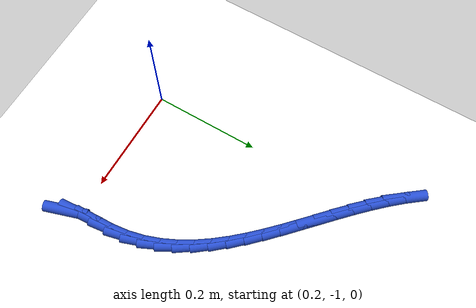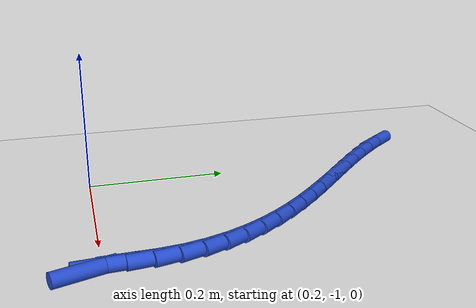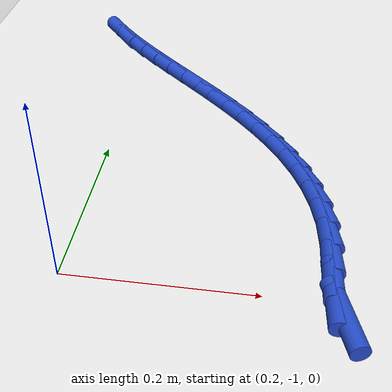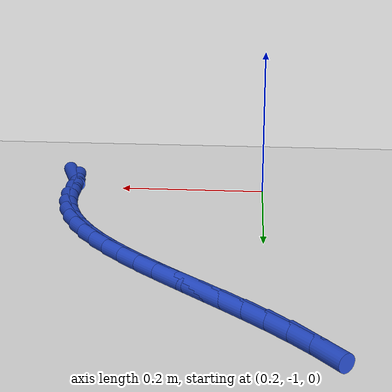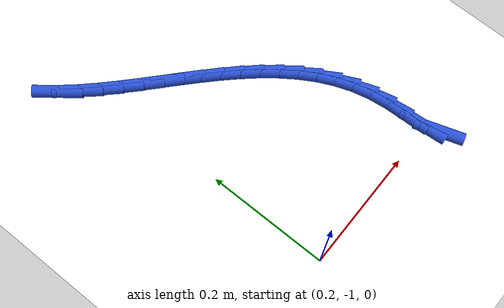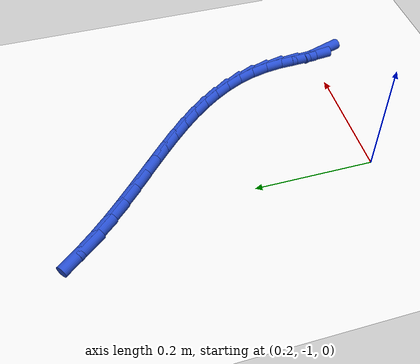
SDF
<sdf version="1.6">
 <world name="default">
  <model name="ground_plane">
   <static>1</static>
   <link name="link">
    <collision name="collision">
     <geometry><plane><normal>0 0 1</normal><size>100 100</size></plane></geometry>
     <surface><friction><ode><mu>100</mu><mu2>50</mu2></ode></friction></surface>
    </collision>
    <visual name="visual">
     <cast_shadows>0</cast_shadows>
     <geometry><plane><normal>0 0 1</normal><size>100 100</size></plane></geometry>
     <material>
      <script><uri>file://media/materials/scripts/gazebo.material</uri><name>Gazebo/WhiteGlow</name></script>
     </material>
    </visual>
   </link>
  </model>
  <model name="line">
   <link name="link_212">
    <pose>0.4740690584498068 -1.020296356066249 0.01 0 1.57 -1.2553770291629291</pose>
    <collision name="collision">
     <geometry><cylinder><radius>0.01</radius><length>0.08</length></cylinder></geometry>
    </collision>
    <visual name="visual">
     <material>
      <script><name>Gazebo/Blue</name><uri>file://media/materials/scripts/gazebo.material</uri></script>
     </material>
     <geometry><cylinder><radius>0.01</radius><length>0.08</length></cylinder></geometry>
    </visual>
   </link>
   <link name="link_213">
    <pose>0.4661268190462648 -0.9959570514894299 0.01 0 1.57 -1.4913631433843777</pose>
    <collision name="collision">
     <geometry><cylinder><radius>0.01</radius><length>0.08</length></cylinder></geometry>
    </collision>
    <visual name="visual">
     <material>
      <script><name>Gazebo/Blue</name><uri>file://media/materials/scripts/gazebo.material</uri></script>
     </material>
     <geometry><cylinder><radius>0.01</radius><length>0.08</length></cylinder></geometry>
    </visual>
   </link>
   <link name="link_214">
    <pose>0.4637227643011565 -0.9657556132305034 0.01 0 1.57 -1.5306706487480346</pose>
    <collision name="collision">
     <geometry><cylinder><radius>0.01</radius><length>0.08</length></cylinder></geometry>
    </collision>
    <visual name="visual">
     <material>
      <script><name>Gazebo/Blue</name><uri>file://media/materials/scripts/gazebo.material</uri></script>
     </material>
     <geometry><cylinder><radius>0.01</radius><length>0.08</length></cylinder></geometry>
    </visual>
   </link>
   <link name="link_215">
    <pose>0.4624248432940678 -0.9334265806955132 0.01 0 1.57 -1.4438494845119905</pose>
    <collision name="collision">
     <geometry><cylinder><radius>0.01</radius><length>0.08</length></cylinder></geometry>
    </collision>
    <visual name="visual">
     <material>
      <script><name>Gazebo/Blue</name><uri>file://media/materials/scripts/gazebo.material</uri></script>
     </material>
     <geometry><cylinder><radius>0.01</radius><length>0.08</length></cylinder></geometry>
    </visual>
   </link>
   <link name="link_216">
    <pose>0.4584376005487081 -0.9021867261035383 0.01 0 1.57 -1.331331052519729</pose>
    <collision name="collision">
     <geometry><cylinder><radius>0.01</radius><length>0.08</length></cylinder></geometry>
    </collision>
    <visual name="visual">
     <material>
      <script><name>Gazebo/Blue</name><uri>file://media/materials/scripts/gazebo.material</uri></script>
     </material>
     <geometry><cylinder><radius>0.01</radius><length>0.08</length></cylinder></geometry>
    </visual>
   </link>
   <link name="link_217">
    <pose>0.45120881739041707 -0.872578770672282 0.01 0 1.57 -1.2236348479890236</pose>
    <collision name="collision">
     <geometry><cylinder><radius>0.01</radius><length>0.08</length></cylinder></geometry>
    </collision>
    <visual name="visual">
     <material>
      <script><name>Gazebo/Blue</name><uri>file://media/materials/scripts/gazebo.material</uri></script>
     </material>
     <geometry><cylinder><radius>0.01</radius><length>0.08</length></cylinder></geometry>
    </visual>
   </link>
   <link name="link_218">
    <pose>0.44103102129846117 -0.8444489418272944 0.01 0 1.57 -1.1242576451965154</pose>
    <collision name="collision">
     <geometry><cylinder><radius>0.01</radius><length>0.08</length></cylinder></geometry>
    </collision>
    <visual name="visual">
     <material>
      <script><name>Gazebo/Blue</name><uri>file://media/materials/scripts/gazebo.material</uri></script>
     </material>
     <geometry><cylinder><radius>0.01</radius><length>0.08</length></cylinder></geometry>
    </visual>
   </link>
   <link name="link_219">
    <pose>0.4281967418242833 -0.8176434652856148 0.01 0 1.57 -1.0356339184760317</pose>
    <collision name="collision">
     <geometry><cylinder><radius>0.01</radius><length>0.08</length></cylinder></geometry>
    </collision>
    <visual name="visual">
     <material>
      <script><name>Gazebo/Blue</name><uri>file://media/materials/scripts/gazebo.material</uri></script>
     </material>
     <geometry><cylinder><radius>0.01</radius><length>0.08</length></cylinder></geometry>
    </visual>
   </link>
   <link name="link_220">
    <pose>0.4129985085193274 -0.792008566764283 0.01 0 1.57 -0.9590626154081985</pose>
    <collision name="collision">
     <geometry><cylinder><radius>0.01</radius><length>0.08</length></cylinder></geometry>
    </collision>
    <visual name="visual">
     <material>
      <script><name>Gazebo/Blue</name><uri>file://media/materials/scripts/gazebo.material</uri></script>
     </material>
     <geometry><cylinder><radius>0.01</radius><length>0.08</length></cylinder></geometry>
    </visual>
   </link>
   <link name="link_221">
    <pose>0.39572885093503607 -0.7673904719803374 0.01 0 1.57 -0.8949141798943004</pose>
    <collision name="collision">
     <geometry><cylinder><radius>0.01</radius><length>0.08</length></cylinder></geometry>
    </collision>
    <visual name="visual">
     <material>
      <script><name>Gazebo/Blue</name><uri>file://media/materials/scripts/gazebo.material</uri></script>
     </material>
     <geometry><cylinder><radius>0.01</radius><length>0.08</length></cylinder></geometry>
    </visual>
   </link>
   <link name="link_222">
    <pose>0.37668029862285307 -0.7436354066508178 0.01 0 1.57 -0.8429492887810607</pose>
    <collision name="collision">
     <geometry><cylinder><radius>0.01</radius><length>0.08</length></cylinder></geometry>
    </collision>
    <visual name="visual">
     <material>
      <script><name>Gazebo/Blue</name><uri>file://media/materials/scripts/gazebo.material</uri></script>
     </material>
     <geometry><cylinder><radius>0.01</radius><length>0.08</length></cylinder></geometry>
    </visual>
   </link>
   <link name="link_223">
    <pose>0.35614538113422123 -0.7205895964927634 0.01 0 1.57 -0.8026192550058642</pose>
    <collision name="collision">
     <geometry><cylinder><radius>0.01</radius><length>0.08</length></cylinder></geometry>
    </collision>
    <visual name="visual">
     <material>
      <script><name>Gazebo/Blue</name><uri>file://media/materials/scripts/gazebo.material</uri></script>
     </material>
     <geometry><cylinder><radius>0.01</radius><length>0.08</length></cylinder></geometry>
    </visual>
   </link>
   <link name="link_224">
    <pose>0.3344166280205841 -0.698099267223213 0.01 0 1.57 -0.7732911413222029</pose>
    <collision name="collision">
     <geometry><cylinder><radius>0.01</radius><length>0.08</length></cylinder></geometry>
    </collision>
    <visual name="visual">
     <material>
      <script><name>Gazebo/Blue</name><uri>file://media/materials/scripts/gazebo.material</uri></script>
     </material>
     <geometry><cylinder><radius>0.01</radius><length>0.08</length></cylinder></geometry>
    </visual>
   </link>
   <link name="link_225">
    <pose>0.3117865688333849 -0.6760106445592063 0.01 0 1.57 -0.7543930167081644</pose>
    <collision name="collision">
     <geometry><cylinder><radius>0.01</radius><length>0.08</length></cylinder></geometry>
    </collision>
    <visual name="visual">
     <material>
      <script><name>Gazebo/Blue</name><uri>file://media/materials/scripts/gazebo.material</uri></script>
     </material>
     <geometry><cylinder><radius>0.01</radius><length>0.08</length></cylinder></geometry>
    </visual>
   </link>
   <link name="link_226">
    <pose>0.28854773312406684 -0.6541699542177825 0.01 0 1.57 -0.7454969264527544</pose>
    <collision name="collision">
     <geometry><cylinder><radius>0.01</radius><length>0.08</length></cylinder></geometry>
    </collision>
    <visual name="visual">
     <material>
      <script><name>Gazebo/Blue</name><uri>file://media/materials/scripts/gazebo.material</uri></script>
     </material>
     <geometry><cylinder><radius>0.01</radius><length>0.08</length></cylinder></geometry>
    </visual>
   </link>
   <link name="link_227">
    <pose>0.26499265044407305 -0.6324234219159804 0.01 0 1.57 -0.7463598695274551</pose>
    <collision name="collision">
     <geometry><cylinder><radius>0.01</radius><length>0.08</length></cylinder></geometry>
    </collision>
    <visual name="visual">
     <material>
      <script><name>Gazebo/Blue</name><uri>file://media/materials/scripts/gazebo.material</uri></script>
     </material>
     <geometry><cylinder><radius>0.01</radius><length>0.08</length></cylinder></geometry>
    </visual>
   </link>
   <link name="link_228">
    <pose>0.24141385034484705 -0.6106172733708395 0.01 0 1.57 -0.7569376754966453</pose>
    <collision name="collision">
     <geometry><cylinder><radius>0.01</radius><length>0.08</length></cylinder></geometry>
    </collision>
    <visual name="visual">
     <material>
      <script><name>Gazebo/Blue</name><uri>file://media/materials/scripts/gazebo.material</uri></script>
     </material>
     <geometry><cylinder><radius>0.01</radius><length>0.08</length></cylinder></geometry>
    </visual>
   </link>
   <link name="link_229">
    <pose>0.21810386237783205 -0.5885977342993992 0.01 0 1.57 -0.7773792903101985</pose>
    <collision name="collision">
     <geometry><cylinder><radius>0.01</radius><length>0.08</length></cylinder></geometry>
    </collision>
    <visual name="visual">
     <material>
      <script><name>Gazebo/Blue</name><uri>file://media/materials/scripts/gazebo.material</uri></script>
     </material>
     <geometry><cylinder><radius>0.01</radius><length>0.08</length></cylinder></geometry>
    </visual>
   </link>
   <link name="link_230">
    <pose>0.19535521609447112 -0.5662110304186985 0.01 0 1.57 -0.8080017518778008</pose>
    <collision name="collision">
     <geometry><cylinder><radius>0.01</radius><length>0.08</length></cylinder></geometry>
    </collision>
    <visual name="visual">
     <material>
      <script><name>Gazebo/Blue</name><uri>file://media/materials/scripts/gazebo.material</uri></script>
     </material>
     <geometry><cylinder><radius>0.01</radius><length>0.08</length></cylinder></geometry>
    </visual>
   </link>
   <link name="link_231">
    <pose>0.17346044104620778 -0.5433033874457768 0.01 0 1.57 -0.8492394499717495</pose>
    <collision name="collision">
     <geometry><cylinder><radius>0.01</radius><length>0.08</length></cylinder></geometry>
    </collision>
    <visual name="visual">
     <material>
      <script><name>Gazebo/Blue</name><uri>file://media/materials/scripts/gazebo.material</uri></script>
     </material>
     <geometry><cylinder><radius>0.01</radius><length>0.08</length></cylinder></geometry>
    </visual>
   </link>
   <link name="link_232">
    <pose>0.152712066784485 -0.5197210310976729 0.01 0 1.57 -0.9015555821511335</pose>
    <collision name="collision">
     <geometry><cylinder><radius>0.01</radius><length>0.08</length></cylinder></geometry>
    </collision>
    <visual name="visual">
     <material>
      <script><name>Gazebo/Blue</name><uri>file://media/materials/scripts/gazebo.material</uri></script>
     </material>
     <geometry><cylinder><radius>0.01</radius><length>0.08</length></cylinder></geometry>
    </visual>
   </link>
  </model>
 </world>
</sdf>
